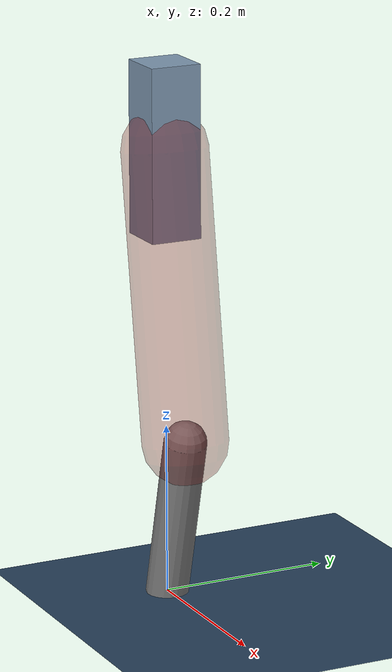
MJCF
<mujoco model="Hopper2D">
	<compiler inertiafromgeom="true" angle="radian" />
	<option timestep="0.001" integrator="implicit" cone="elliptic" solver="Newton" tolerance="1e-10" />

	<default>
		<geom contype="1" conaffinity="1" condim="3" friction="2 0.005 0.0001" solref="0.005 1" />
		<joint limited="true" damping="0.1" />
	</default>

	<asset>
		<texture name="skybox" type="skybox" builtin="gradient" rgb1=".4 .6 .8" rgb2="0 0 0" width="800" height="800" />
		<texture name="grid" type="2d" builtin="checker" rgb1=".1 .2 .3" rgb2=".2 .3 .4" width="300" height="300" mark="edge" markrgb=".2 .3 .4" />
		<material name="ground" texture="grid" texrepeat="1 1" texuniform="true" reflectance="0.1" />
		<material name="leg" rgba="0.5 0.6 0.7 1" />
	</asset>

	<worldbody>

		<geom name="floor" type="plane" size="5 5 0.25" material="ground" />

		<light directional="false" diffuse="0.8 0.8 0.8" specular="0.3 0.3 0.3" pos="0 0 2" dir="0 0 -1" />
		<light mode="targetbodycom" target="base" directional="false" diffuse="0.8 0.8 0.8" specular="0.3 0.3 0.3" pos="0 0 2" dir="0 0 -1" />

		<camera name="fixed" pos="0 -2 1" xyaxes="1 0 0 0 0 1" />
		<camera name="tracking" mode="trackcom" pos="0 -3 1" />

		<body name="root" pos="0 0 0.5251495076725337">
			<joint name="slide_x" type="slide" axis="1 0 0" range="-100 100" />
			<joint name="slide_z" type="slide" axis="0 0 1" range="0 10" />

			<body name="base" pos="0 0 0">
				<geom name="torso" type="box" size="0.03 0.03 0.1" mass="2.347" material="leg" />

				<body name="link1" pos="0 0 0" euler="0 1.4211050109886165 0">
					<joint type="hinge" axis="0 -1 0" pos="0 0 0" name="hinge1" limited="true" range="-3.14 3.14" stiffness="0" damping="0.1" />
					<geom name="thigh" type="capsule" fromto="0 0 0 0.33400161688416896 0 0" size="0.05" rgba="0.5 0 0 0.3" mass="1.081904527275673" />

					<body name="link2" pos="0.33400161688416896 0 0" euler="0 0.39992656586989217 0">
						<joint type="hinge" axis="0 -1 0" pos="0 0 0" name="hinge2" limited="true" range="-3.14 3.14" stiffness="0" damping="0.1" />
						<geom name="shank" type="capsule" fromto="0 0 0 0.20114789078836476 0 0" size="0.025" mass="0.4018331017095283" />

					</body>
				</body>
			</body>
		</body>
	</worldbody>

	<actuator>
		<motor name="torque1" joint="hinge1" ctrlrange="-85.18319253170937 85.18319253170937" ctrllimited="true" gear="1" />
		<motor name="torque2" joint="hinge2" ctrlrange="-12.242759586920066 12.242759586920066" ctrllimited="true" gear="1" />
	</actuator>
</mujoco>
